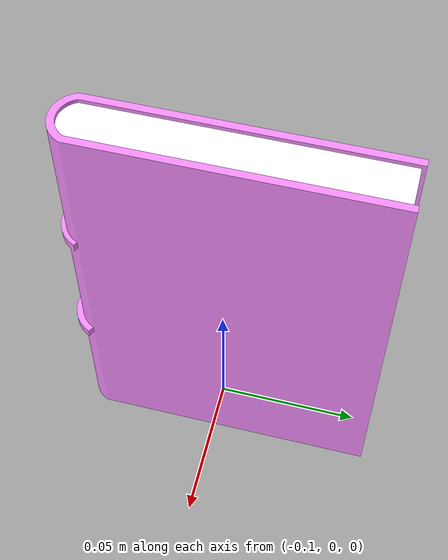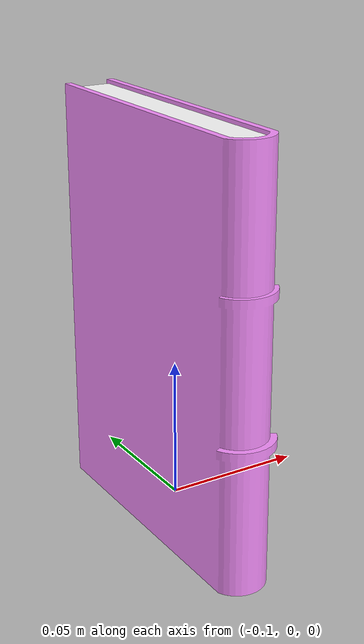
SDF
<?xml version='1.0'?>
<sdf version='1.7'>
  <model name='book_pink'>
    <link name='book_pink::link_2'>
      <pose>-0.1 -0 -0 0 -0 0</pose>
      <inertial>
        <mass>0.3</mass>
        <inertia>
          <ixx>0.0003</ixx>
          <iyy>0.0003</iyy>
          <izz>0.0003</izz>
          <ixy>0</ixy>
          <ixz>0</ixz>
          <iyz>0</iyz>
        </inertia>
        <pose>0 0 0 0 -0 0</pose>
      </inertial>
      <self_collide>0</self_collide>
      <enable_wind>0</enable_wind>
      <kinematic>0</kinematic>
      <gravity>1</gravity>
      <visual name='visual'>
        <pose>-0.13 0 0 0 -0 0</pose>
        <geometry>
          <mesh>
            <uri>model://book_pink/meshes/book2_cover.dae</uri>
            <scale>1 1 1</scale>
          </mesh>
        </geometry>
        <material>
          <lighting>1</lighting>
          <ambient>0.968 0.56 0.992 1</ambient>
          <diffuse>0.968 0.56 0.992 1</diffuse>
          <specular>0.01 0.01 0.01 1</specular>
          <emissive>0 0 0 1</emissive>
          <shader type='pixel'>
            <normal_map>__default__</normal_map>
          </shader>
        </material>
        <cast_shadows>1</cast_shadows>
        <transparency>0</transparency>
      </visual>
      <collision name='collision'>
        <laser_retro>0</laser_retro>
        <max_contacts>10</max_contacts>
        <pose>-0.13 0 0 0 -0 0</pose>
        <geometry>
          <mesh>
            <uri>model://book_pink/meshes/book2_cover.dae</uri>
            <scale>1 1 1</scale>
          </mesh>
        </geometry>
        <surface>
          <friction>
            <ode>
              <mu>1</mu>
              <mu2>1</mu2>
              <fdir1>0 0 0</fdir1>
              <slip1>0</slip1>
              <slip2>0</slip2>
            </ode>
            <torsional>
              <coefficient>1</coefficient>
              <patch_radius>0</patch_radius>
              <surface_radius>0</surface_radius>
              <use_patch_radius>1</use_patch_radius>
              <ode>
                <slip>0</slip>
              </ode>
            </torsional>
          </friction>
          <bounce>
            <restitution_coefficient>0</restitution_coefficient>
            <threshold>1e+06</threshold>
          </bounce>
          <contact>
            <collide_without_contact>0</collide_without_contact>
            <collide_without_contact_bitmask>1</collide_without_contact_bitmask>
            <collide_bitmask>1</collide_bitmask>
            <ode>
              <soft_cfm>0</soft_cfm>
              <soft_erp>0.2</soft_erp>
              <kp>1e+13</kp>
              <kd>1</kd>
              <max_vel>0.01</max_vel>
              <min_depth>0</min_depth>
            </ode>
            <bullet>
              <split_impulse>1</split_impulse>
              <split_impulse_penetration_threshold>-0.01</split_impulse_penetration_threshold>
              <soft_cfm>0</soft_cfm>
              <soft_erp>0.2</soft_erp>
              <kp>1e+13</kp>
              <kd>1</kd>
            </bullet>
          </contact>
        </surface>
      </collision>
    </link>
    <link name='book_pink::link_3'>
      <pose>-0.1 -0 -0 0 -0 0</pose>
      <inertial>
        <mass>0.2</mass>
        <inertia>
          <ixx>0.0002</ixx>
          <iyy>0.0002</iyy>
          <izz>0.0002</izz>
          <ixy>0</ixy>
          <ixz>0</ixz>
          <iyz>0</iyz>
        </inertia>
        <pose>0 0 0 0 -0 0</pose>
      </inertial>
      <self_collide>0</self_collide>
      <enable_wind>0</enable_wind>
      <kinematic>0</kinematic>
      <gravity>1</gravity>
      <visual name='visual'>
        <pose>-0.13 0 0 0 -0 0</pose>
        <geometry>
          <mesh>
            <uri>model://book_pink/meshes/book2_page.dae</uri>
            <scale>1 1 1</scale>
          </mesh>
        </geometry>
        <material>
          <lighting>1</lighting>
          <ambient>1 1 1 1</ambient>
          <diffuse>1 1 1 1</diffuse>
          <specular>0.01 0.01 0.01 1</specular>
          <emissive>0 0 0 1</emissive>
          <shader type='pixel'>
            <normal_map>__default__</normal_map>
          </shader>
        </material>
        <cast_shadows>1</cast_shadows>
        <transparency>0</transparency>
      </visual>
      <collision name='collision'>
        <laser_retro>0</laser_retro>
        <max_contacts>10</max_contacts>
        <pose>-0.13 0 0 0 -0 0</pose>
        <geometry>
          <mesh>
            <uri>model://book_pink/meshes/book2_page.dae</uri>
            <scale>1 1 1</scale>
          </mesh>
        </geometry>
        <surface>
          <friction>
            <ode>
              <mu>1</mu>
              <mu2>1</mu2>
              <fdir1>0 0 0</fdir1>
              <slip1>0</slip1>
              <slip2>0</slip2>
            </ode>
            <torsional>
              <coefficient>1</coefficient>
              <patch_radius>0</patch_radius>
              <surface_radius>0</surface_radius>
              <use_patch_radius>1</use_patch_radius>
              <ode>
                <slip>0</slip>
              </ode>
            </torsional>
          </friction>
          <bounce>
            <restitution_coefficient>0</restitution_coefficient>
            <threshold>1e+06</threshold>
          </bounce>
          <contact>
            <collide_without_contact>0</collide_without_contact>
            <collide_without_contact_bitmask>1</collide_without_contact_bitmask>
            <collide_bitmask>1</collide_bitmask>
            <ode>
              <soft_cfm>0</soft_cfm>
              <soft_erp>0.2</soft_erp>
              <kp>1e+13</kp>
              <kd>1</kd>
              <max_vel>0.01</max_vel>
              <min_depth>0</min_depth>
            </ode>
            <bullet>
              <split_impulse>1</split_impulse>
              <split_impulse_penetration_threshold>-0.01</split_impulse_penetration_threshold>
              <soft_cfm>0</soft_cfm>
              <soft_erp>0.2</soft_erp>
              <kp>1e+13</kp>
              <kd>1</kd>
            </bullet>
          </contact>
        </surface>
      </collision>
    </link>
    <joint name='book_pink::joint_2' type='fixed'>
      <parent>book_pink::link_2</parent>
      <child>book_pink::link_3</child>
      <pose>-0 0 0 0 -0 0</pose>
      <physics>
        <ode>
          <limit>
            <cfm>0</cfm>
            <erp>0.2</erp>
          </limit>
          <suspension>
            <cfm>0</cfm>
            <erp>0.2</erp>
          </suspension>
        </ode>
      </physics>
    </joint>
    <static>0</static>
    <allow_auto_disable>1</allow_auto_disable>
  </model>
</sdf>
